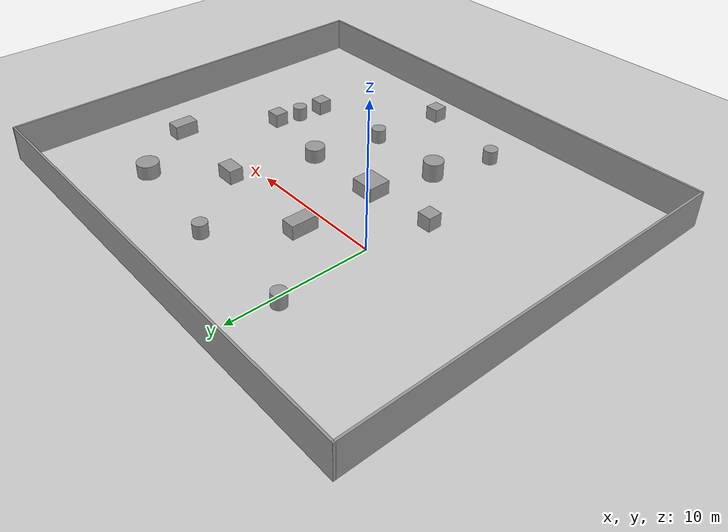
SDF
<sdf version="1.7">
 <world name="default">
  <light name="sun" type="directional">
   <pose>0 0 10 0 -0 0</pose>
   <diffuse>0.8 0.8 0.8 1</diffuse>
   <specular>0.2 0.2 0.2 1</specular>
   <attenuation>
    <range>1000</range>
    <constant>0.9</constant>
    <linear>0.01</linear>
    <quadratic>0.001</quadratic>
   </attenuation>
   <direction>-0.5 0.1 -0.9</direction>
   <spot><inner_angle>0</inner_angle><outer_angle>0</outer_angle><falloff>0</falloff></spot>
  </light>
  <model name="ground_plane">
   <static>1</static>
   <link name="link">
    <collision name="collision">
     <geometry><plane><normal>0 0 1</normal><size>100 100</size></plane></geometry>
     <surface><friction><ode><mu>100</mu><mu2>50</mu2></ode></friction></surface>
    </collision>
    <visual name="visual">
     <cast_shadows>0</cast_shadows>
     <geometry><plane><normal>0 0 1</normal><size>100 100</size></plane></geometry>
     <material>
      <script><uri>file://media/materials/scripts/gazebo.material</uri><name>Gazebo/Grey</name></script>
     </material>
    </visual>
   </link>
  </model>
  <gravity>0 0 -9.8</gravity>
  <magnetic_field>6e-06 2.3e-05 -4.2e-05</magnetic_field>
  <atmosphere type="adiabatic"/>
  <physics type="ode">
   <max_step_size>0.001</max_step_size>
   <real_time_factor>1</real_time_factor>
   <real_time_update_rate>1000</real_time_update_rate>
  </physics>
  <scene><ambient>0.4 0.4 0.4 1</ambient><background>0.7 0.7 0.7 1</background><shadows>1</shadows></scene>
  <spherical_coordinates>
   <surface_model>EARTH_WGS84</surface_model>
   <latitude_deg>0</latitude_deg>
   <longitude_deg>0</longitude_deg>
   <elevation>0</elevation>
   <heading_deg>0</heading_deg>
  </spherical_coordinates>
  <model name="paper_world">
   <pose>5.91262 -2.7055 0 0 -0 0</pose>
   <link name="Wall_10">
    <collision name="Wall_10_Collision">
     <geometry><box><size>34 0.15 2.5</size></box></geometry>
     <pose>0 0 1.25 0 -0 0</pose>
    </collision>
    <visual name="Wall_10_Visual">
     <pose>0 0 1.25 0 -0 0</pose>
     <geometry><box><size>34 0.15 2.5</size></box></geometry>
     <material>
      <script><uri>file://media/materials/scripts/gazebo.material</uri><name>Gazebo/Grey</name></script>
      <ambient>1 1 1 1</ambient>
     </material>
     <meta><layer>0</layer></meta>
    </visual>
    <pose>-0 14.3 0 0 -0 0</pose>
   </link>
   <link name="Wall_2">
    <collision name="Wall_2_Collision">
     <geometry><box><size>28.75 0.15 2.5</size></box></geometry>
     <pose>0 0 1.25 0 -0 0</pose>
    </collision>
    <visual name="Wall_2_Visual">
     <pose>0 0 1.25 0 -0 0</pose>
     <geometry><box><size>28.75 0.15 2.5</size></box></geometry>
     <material>
      <script><uri>file://media/materials/scripts/gazebo.material</uri><name>Gazebo/Grey</name></script>
      <ambient>1 1 1 1</ambient>
     </material>
     <meta><layer>0</layer></meta>
    </visual>
    <pose>-16.925 -0 0 0 -0 -1.5708</pose>
   </link>
   <link name="Wall_3">
    <collision name="Wall_3_Collision">
     <geometry><box><size>34 0.15 2.5</size></box></geometry>
     <pose>0 0 1.25 0 -0 0</pose>
    </collision>
    <visual name="Wall_3_Visual">
     <pose>0 0 1.25 0 -0 0</pose>
     <geometry><box><size>34 0.15 2.5</size></box></geometry>
     <material>
      <script><uri>file://media/materials/scripts/gazebo.material</uri><name>Gazebo/Grey</name></script>
      <ambient>1 1 1 1</ambient>
     </material>
     <meta><layer>0</layer></meta>
    </visual>
    <pose>-0 -14.3 0 0 -0 0</pose>
   </link>
   <link name="Wall_4">
    <collision name="Wall_4_Collision">
     <geometry><box><size>28.75 0.15 2.5</size></box></geometry>
     <pose>0 0 1.25 0 -0 0</pose>
    </collision>
    <visual name="Wall_4_Visual">
     <pose>0 0 1.25 0 -0 0</pose>
     <geometry><box><size>28.75 0.15 2.5</size></box></geometry>
     <material>
      <script><uri>file://media/materials/scripts/gazebo.material</uri><name>Gazebo/Grey</name></script>
      <ambient>1 1 1 1</ambient>
     </material>
     <meta><layer>0</layer></meta>
    </visual>
    <pose>16.925 -0 0 0 -0 1.5708</pose>
   </link>
   <static>1</static>
  </model>
  <model name="test">
   <link name="link_0">
    <inertial>
     <mass>2.35844</mass>
     <inertia><ixx>0.54418</ixx><ixy>0</ixy><ixz>0</ixz><iyy>0.54418</iyy><iyz>0</iyz><izz>0.695287</izz></inertia>
    </inertial>
    <pose>6.8224 9.17542 0 0 -0 0</pose>
    <visual name="visual">
     <geometry><cylinder><radius>0.767864</radius><length>1</length></cylinder></geometry>
     <material>
      <lighting>1</lighting>
      <script><uri>file://media/materials/scripts/gazebo.material</uri><name>Gazebo/Grey</name></script>
      <shader type="pixel"/>
     </material>
    </visual>
    <collision name="collision">
     <geometry><cylinder><radius>0.767864</radius><length>1</length></cylinder></geometry>
     <surface>
      <friction>
       <ode><mu>1</mu><mu2>1</mu2><fdir1>0 0 0</fdir1><slip1>0</slip1><slip2>0</slip2></ode>
       <torsional>
        <coefficient>1</coefficient>
        <patch_radius>0</patch_radius>
        <surface_radius>0</surface_radius>
        <use_patch_radius>1</use_patch_radius>
        <ode><slip>0</slip></ode>
       </torsional>
      </friction>
      <bounce><restitution_coefficient>0</restitution_coefficient><threshold>1e+06</threshold></bounce>
      <contact>
       <collide_without_contact>0</collide_without_contact>
       <collide_without_contact_bitmask>1</collide_without_contact_bitmask>
       <collide_bitmask>1</collide_bitmask>
       <ode>
        <soft_cfm>0</soft_cfm>
        <soft_erp>0.2</soft_erp>
        <kp>1e+13</kp>
        <kd>1</kd>
        <max_vel>0.01</max_vel>
        <min_depth>0</min_depth>
       </ode>
       <bullet>
        <split_impulse>1</split_impulse>
        <split_impulse_penetration_threshold>-0.01</split_impulse_penetration_threshold>
        <soft_cfm>0</soft_cfm>
        <soft_erp>0.2</soft_erp>
        <kp>1e+13</kp>
        <kd>1</kd>
       </bullet>
      </contact>
     </surface>
    </collision>
   </link>
   <link name="link_1">
    <inertial>
     <mass>1.39777</mass>
     <inertia>
      <ixx>0.232962</ixx>
      <ixy>0</ixy>
      <ixz>0</ixz>
      <iyy>0.344058</iyy>
      <iyz>0</iyz>
      <izz>0.344058</izz>
     </inertia>
    </inertial>
    <pose>2.9123 5.19786 0 0 -0 0</pose>
    <visual name="visual">
     <geometry><box><size>1.39777 1 1</size></box></geometry>
     <material>
      <lighting>1</lighting>
      <script><uri>file://media/materials/scripts/gazebo.material</uri><name>Gazebo/Grey</name></script>
      <shader type="pixel"/>
     </material>
    </visual>
    <collision name="collision">
     <geometry><box><size>1.39777 1 1</size></box></geometry>
     <surface>
      <friction>
       <ode><mu>1</mu><mu2>1</mu2><fdir1>0 0 0</fdir1><slip1>0</slip1><slip2>0</slip2></ode>
       <torsional>
        <coefficient>1</coefficient>
        <patch_radius>0</patch_radius>
        <surface_radius>0</surface_radius>
        <use_patch_radius>1</use_patch_radius>
        <ode><slip>0</slip></ode>
       </torsional>
      </friction>
      <bounce><restitution_coefficient>0</restitution_coefficient><threshold>1e+06</threshold></bounce>
      <contact>
       <collide_without_contact>0</collide_without_contact>
       <collide_without_contact_bitmask>1</collide_without_contact_bitmask>
       <collide_bitmask>1</collide_bitmask>
       <ode>
        <soft_cfm>0</soft_cfm>
        <soft_erp>0.2</soft_erp>
        <kp>1e+13</kp>
        <kd>1</kd>
        <max_vel>0.01</max_vel>
        <min_depth>0</min_depth>
       </ode>
       <bullet>
        <split_impulse>1</split_impulse>
        <split_impulse_penetration_threshold>-0.01</split_impulse_penetration_threshold>
        <soft_cfm>0</soft_cfm>
        <soft_erp>0.2</soft_erp>
        <kp>1e+13</kp>
        <kd>1</kd>
       </bullet>
      </contact>
     </surface>
    </collision>
   </link>
   <link name="link_10">
    <inertial>
     <mass>1</mass>
     <inertia>
      <ixx>0.166667</ixx>
      <ixy>0</ixy>
      <ixz>0</ixz>
      <iyy>0.166667</iyy>
      <iyz>0</iyz>
      <izz>0.166667</izz>
     </inertia>
    </inertial>
    <pose>-9.28458 -1.16229 0 0 -0 0</pose>
    <visual name="visual">
     <geometry><box><size>1 1 1</size></box></geometry>
     <material>
      <lighting>1</lighting>
      <script><uri>file://media/materials/scripts/gazebo.material</uri><name>Gazebo/Grey</name></script>
      <shader type="pixel"/>
     </material>
    </visual>
    <collision name="collision">
     <geometry><box><size>1 1 1</size></box></geometry>
     <surface>
      <friction>
       <ode><mu>1</mu><mu2>1</mu2><fdir1>0 0 0</fdir1><slip1>0</slip1><slip2>0</slip2></ode>
       <torsional>
        <coefficient>1</coefficient>
        <patch_radius>0</patch_radius>
        <surface_radius>0</surface_radius>
        <use_patch_radius>1</use_patch_radius>
        <ode><slip>0</slip></ode>
       </torsional>
      </friction>
      <bounce><restitution_coefficient>0</restitution_coefficient><threshold>1e+06</threshold></bounce>
      <contact>
       <collide_without_contact>0</collide_without_contact>
       <collide_without_contact_bitmask>1</collide_without_contact_bitmask>
       <collide_bitmask>1</collide_bitmask>
       <ode>
        <soft_cfm>0</soft_cfm>
        <soft_erp>0.2</soft_erp>
        <kp>1e+13</kp>
        <kd>1</kd>
        <max_vel>0.01</max_vel>
        <min_depth>0</min_depth>
       </ode>
       <bullet>
        <split_impulse>1</split_impulse>
        <split_impulse_penetration_threshold>-0.01</split_impulse_penetration_threshold>
        <soft_cfm>0</soft_cfm>
        <soft_erp>0.2</soft_erp>
        <kp>1e+13</kp>
        <kd>1</kd>
       </bullet>
      </contact>
     </surface>
    </collision>
   </link>
   <link name="link_11">
    <inertial>
     <mass>1</mass>
     <inertia><ixx>0.145833</ixx><ixy>0</ixy><ixz>0</ixz><iyy>0.145833</iyy><iyz>0</iyz><izz>0.125</izz></inertia>
    </inertial>
    <pose>-6.68815 -9.61856 0 0 -0 0</pose>
    <visual name="visual">
     <geometry><cylinder><radius>0.5</radius><length>1</length></cylinder></geometry>
     <material>
      <lighting>1</lighting>
      <script><uri>file://media/materials/scripts/gazebo.material</uri><name>Gazebo/Grey</name></script>
      <shader type="pixel"/>
     </material>
    </visual>
    <collision name="collision">
     <geometry><cylinder><radius>0.5</radius><length>1</length></cylinder></geometry>
     <surface>
      <friction>
       <ode><mu>1</mu><mu2>1</mu2><fdir1>0 0 0</fdir1><slip1>0</slip1><slip2>0</slip2></ode>
       <torsional>
        <coefficient>1</coefficient>
        <patch_radius>0</patch_radius>
        <surface_radius>0</surface_radius>
        <use_patch_radius>1</use_patch_radius>
        <ode><slip>0</slip></ode>
       </torsional>
      </friction>
      <bounce><restitution_coefficient>0</restitution_coefficient><threshold>1e+06</threshold></bounce>
      <contact>
       <collide_without_contact>0</collide_without_contact>
       <collide_without_contact_bitmask>1</collide_without_contact_bitmask>
       <collide_bitmask>1</collide_bitmask>
       <ode>
        <soft_cfm>0</soft_cfm>
        <soft_erp>0.2</soft_erp>
        <kp>1e+13</kp>
        <kd>1</kd>
        <max_vel>0.01</max_vel>
        <min_depth>0</min_depth>
       </ode>
       <bullet>
        <split_impulse>1</split_impulse>
        <split_impulse_penetration_threshold>-0.01</split_impulse_penetration_threshold>
        <soft_cfm>0</soft_cfm>
        <soft_erp>0.2</soft_erp>
        <kp>1e+13</kp>
        <kd>1</kd>
       </bullet>
      </contact>
     </surface>
    </collision>
   </link>
   <link name="link_12">
    <inertial>
     <mass>1</mass>
     <inertia>
      <ixx>0.166667</ixx>
      <ixy>0</ixy>
      <ixz>0</ixz>
      <iyy>0.166667</iyy>
      <iyz>0</iyz>
      <izz>0.166667</izz>
     </inertia>
    </inertial>
    <pose>6.8354 -1.59286 0 0 -0 0</pose>
    <visual name="visual">
     <geometry><box><size>1 1 1</size></box></geometry>
     <material>
      <lighting>1</lighting>
      <script><uri>file://media/materials/scripts/gazebo.material</uri><name>Gazebo/Grey</name></script>
      <shader type="pixel"/>
     </material>
    </visual>
    <collision name="collision">
     <geometry><box><size>1 1 1</size></box></geometry>
     <surface>
      <friction>
       <ode><mu>1</mu><mu2>1</mu2><fdir1>0 0 0</fdir1><slip1>0</slip1><slip2>0</slip2></ode>
       <torsional>
        <coefficient>1</coefficient>
        <patch_radius>0</patch_radius>
        <surface_radius>0</surface_radius>
        <use_patch_radius>1</use_patch_radius>
        <ode><slip>0</slip></ode>
       </torsional>
      </friction>
      <bounce><restitution_coefficient>0</restitution_coefficient><threshold>1e+06</threshold></bounce>
      <contact>
       <collide_without_contact>0</collide_without_contact>
       <collide_without_contact_bitmask>1</collide_without_contact_bitmask>
       <collide_bitmask>1</collide_bitmask>
       <ode>
        <soft_cfm>0</soft_cfm>
        <soft_erp>0.2</soft_erp>
        <kp>1e+13</kp>
        <kd>1</kd>
        <max_vel>0.01</max_vel>
        <min_depth>0</min_depth>
       </ode>
       <bullet>
        <split_impulse>1</split_impulse>
        <split_impulse_penetration_threshold>-0.01</split_impulse_penetration_threshold>
        <soft_cfm>0</soft_cfm>
        <soft_erp>0.2</soft_erp>
        <kp>1e+13</kp>
        <kd>1</kd>
       </bullet>
      </contact>
     </surface>
    </collision>
   </link>
   <link name="link_13">
    <inertial>
     <mass>1</mass>
     <inertia><ixx>0.145833</ixx><ixy>0</ixy><ixz>0</ixz><iyy>0.145833</iyy><iyz>0</iyz><izz>0.125</izz></inertia>
    </inertial>
    <pose>0.279985 -5.64687 0 0 -0 0</pose>
    <visual name="visual">
     <geometry><cylinder><radius>0.5</radius><length>1</length></cylinder></geometry>
     <material>
      <lighting>1</lighting>
      <script><uri>file://media/materials/scripts/gazebo.material</uri><name>Gazebo/Grey</name></script>
      <shader type="pixel"/>
     </material>
    </visual>
    <collision name="collision">
     <geometry><cylinder><radius>0.5</radius><length>1</length></cylinder></geometry>
     <surface>
      <friction>
       <ode><mu>1</mu><mu2>1</mu2><fdir1>0 0 0</fdir1><slip1>0</slip1><slip2>0</slip2></ode>
       <torsional>
        <coefficient>1</coefficient>
        <patch_radius>0</patch_radius>
        <surface_radius>0</surface_radius>
        <use_patch_radius>1</use_patch_radius>
        <ode><slip>0</slip></ode>
       </torsional>
      </friction>
      <bounce><restitution_coefficient>0</restitution_coefficient><threshold>1e+06</threshold></bounce>
      <contact>
       <collide_without_contact>0</collide_without_contact>
       <collide_without_contact_bitmask>1</collide_without_contact_bitmask>
       <collide_bitmask>1</collide_bitmask>
       <ode>
        <soft_cfm>0</soft_cfm>
        <soft_erp>0.2</soft_erp>
        <kp>1e+13</kp>
        <kd>1</kd>
        <max_vel>0.01</max_vel>
        <min_depth>0</min_depth>
       </ode>
       <bullet>
        <split_impulse>1</split_impulse>
        <split_impulse_penetration_threshold>-0.01</split_impulse_penetration_threshold>
        <soft_cfm>0</soft_cfm>
        <soft_erp>0.2</soft_erp>
        <kp>1e+13</kp>
        <kd>1</kd>
       </bullet>
      </contact>
     </surface>
    </collision>
   </link>
   <link name="link_14">
    <inertial>
     <mass>1.71585</mass>
     <inertia>
      <ixx>0.563966</ixx>
      <ixy>0</ixy>
      <ixz>0</ixz>
      <iyy>0.285976</iyy>
      <iyz>0</iyz>
      <izz>0.563966</izz>
     </inertia>
    </inertial>
    <pose>9.96126 4.5598 0 0 -0 0</pose>
    <visual name="visual">
     <geometry><box><size>1 1.71585 1</size></box></geometry>
     <material>
      <lighting>1</lighting>
      <script><uri>file://media/materials/scripts/gazebo.material</uri><name>Gazebo/Grey</name></script>
      <shader type="pixel"/>
     </material>
    </visual>
    <collision name="collision">
     <geometry><box><size>1 1.71585 1</size></box></geometry>
     <surface>
      <friction>
       <ode><mu>1</mu><mu2>1</mu2><fdir1>0 0 0</fdir1><slip1>0</slip1><slip2>0</slip2></ode>
       <torsional>
        <coefficient>1</coefficient>
        <patch_radius>0</patch_radius>
        <surface_radius>0</surface_radius>
        <use_patch_radius>1</use_patch_radius>
        <ode><slip>0</slip></ode>
       </torsional>
      </friction>
      <bounce><restitution_coefficient>0</restitution_coefficient><threshold>1e+06</threshold></bounce>
      <contact>
       <collide_without_contact>0</collide_without_contact>
       <collide_without_contact_bitmask>1</collide_without_contact_bitmask>
       <collide_bitmask>1</collide_bitmask>
       <ode>
        <soft_cfm>0</soft_cfm>
        <soft_erp>0.2</soft_erp>
        <kp>1e+13</kp>
        <kd>1</kd>
        <max_vel>0.01</max_vel>
        <min_depth>0</min_depth>
       </ode>
       <bullet>
        <split_impulse>1</split_impulse>
        <split_impulse_penetration_threshold>-0.01</split_impulse_penetration_threshold>
        <soft_cfm>0</soft_cfm>
        <soft_erp>0.2</soft_erp>
        <kp>1e+13</kp>
        <kd>1</kd>
       </bullet>
      </contact>
     </surface>
    </collision>
   </link>
   <link name="link_15">
    <inertial>
     <mass>1</mass>
     <inertia><ixx>0.145833</ixx><ixy>0</ixy><ixz>0</ixz><iyy>0.145833</iyy><iyz>0</iyz><izz>0.125</izz></inertia>
    </inertial>
    <pose>6.45641 -3.33112 0 0 -0 0</pose>
    <visual name="visual">
     <geometry><cylinder><radius>0.5</radius><length>1</length></cylinder></geometry>
     <material>
      <lighting>1</lighting>
      <script><uri>file://media/materials/scripts/gazebo.material</uri><name>Gazebo/Grey</name></script>
      <shader type="pixel"/>
     </material>
    </visual>
    <collision name="collision">
     <geometry><cylinder><radius>0.5</radius><length>1</length></cylinder></geometry>
     <surface>
      <friction>
       <ode><mu>1</mu><mu2>1</mu2><fdir1>0 0 0</fdir1><slip1>0</slip1><slip2>0</slip2></ode>
       <torsional>
        <coefficient>1</coefficient>
        <patch_radius>0</patch_radius>
        <surface_radius>0</surface_radius>
        <use_patch_radius>1</use_patch_radius>
        <ode><slip>0</slip></ode>
       </torsional>
      </friction>
      <bounce><restitution_coefficient>0</restitution_coefficient><threshold>1e+06</threshold></bounce>
      <contact>
       <collide_without_contact>0</collide_without_contact>
       <collide_without_contact_bitmask>1</collide_without_contact_bitmask>
       <collide_bitmask>1</collide_bitmask>
       <ode>
        <soft_cfm>0</soft_cfm>
        <soft_erp>0.2</soft_erp>
        <kp>1e+13</kp>
        <kd>1</kd>
        <max_vel>0.01</max_vel>
        <min_depth>0</min_depth>
       </ode>
       <bullet>
        <split_impulse>1</split_impulse>
        <split_impulse_penetration_threshold>-0.01</split_impulse_penetration_threshold>
        <soft_cfm>0</soft_cfm>
        <soft_erp>0.2</soft_erp>
        <kp>1e+13</kp>
        <kd>1</kd>
       </bullet>
      </contact>
     </surface>
    </collision>
   </link>
   <link name="link_2">
    <inertial>
     <mass>1</mass>
     <inertia><ixx>0.145833</ixx><ixy>0</ixy><ixz>0</ixz><iyy>0.145833</iyy><iyz>0</iyz><izz>0.125</izz></inertia>
    </inertial>
    <pose>-1.14847 10.0992 0 0 -0 0</pose>
    <visual name="visual">
     <geometry><cylinder><radius>0.5</radius><length>1</length></cylinder></geometry>
     <material>
      <lighting>1</lighting>
      <script><uri>file://media/materials/scripts/gazebo.material</uri><name>Gazebo/Grey</name></script>
      <shader type="pixel"/>
     </material>
    </visual>
    <collision name="collision">
     <geometry><cylinder><radius>0.5</radius><length>1</length></cylinder></geometry>
     <surface>
      <friction>
       <ode><mu>1</mu><mu2>1</mu2><fdir1>0 0 0</fdir1><slip1>0</slip1><slip2>0</slip2></ode>
       <torsional>
        <coefficient>1</coefficient>
        <patch_radius>0</patch_radius>
        <surface_radius>0</surface_radius>
        <use_patch_radius>1</use_patch_radius>
        <ode><slip>0</slip></ode>
       </torsional>
      </friction>
      <bounce><restitution_coefficient>0</restitution_coefficient><threshold>1e+06</threshold></bounce>
      <contact>
       <collide_without_contact>0</collide_without_contact>
       <collide_without_contact_bitmask>1</collide_without_contact_bitmask>
       <collide_bitmask>1</collide_bitmask>
       <ode>
        <soft_cfm>0</soft_cfm>
        <soft_erp>0.2</soft_erp>
        <kp>1e+13</kp>
        <kd>1</kd>
        <max_vel>0.01</max_vel>
        <min_depth>0</min_depth>
       </ode>
       <bullet>
        <split_impulse>1</split_impulse>
        <split_impulse_penetration_threshold>-0.01</split_impulse_penetration_threshold>
        <soft_cfm>0</soft_cfm>
        <soft_erp>0.2</soft_erp>
        <kp>1e+13</kp>
        <kd>1</kd>
       </bullet>
      </contact>
     </surface>
    </collision>
   </link>
   <link name="link_3">
    <inertial>
     <mass>2.75203</mass>
     <inertia>
      <ixx>0.815472</ixx>
      <ixy>0</ixy>
      <ixz>0</ixz>
      <iyy>0.908932</iyy>
      <iyz>0</iyz>
      <izz>1.26573</izz>
     </inertia>
    </inertial>
    <pose>-4.29739 -0.820509 0 0 -0 0</pose>
    <visual name="visual">
     <geometry><box><size>1.72143 1.59869 1</size></box></geometry>
     <material>
      <lighting>1</lighting>
      <script><uri>file://media/materials/scripts/gazebo.material</uri><name>Gazebo/Grey</name></script>
      <shader type="pixel"/>
     </material>
    </visual>
    <collision name="collision">
     <geometry><box><size>1.72143 1.59869 1</size></box></geometry>
     <surface>
      <friction>
       <ode><mu>1</mu><mu2>1</mu2><fdir1>0 0 0</fdir1><slip1>0</slip1><slip2>0</slip2></ode>
       <torsional>
        <coefficient>1</coefficient>
        <patch_radius>0</patch_radius>
        <surface_radius>0</surface_radius>
        <use_patch_radius>1</use_patch_radius>
        <ode><slip>0</slip></ode>
       </torsional>
      </friction>
      <bounce><restitution_coefficient>0</restitution_coefficient><threshold>1e+06</threshold></bounce>
      <contact>
       <collide_without_contact>0</collide_without_contact>
       <collide_without_contact_bitmask>1</collide_without_contact_bitmask>
       <collide_bitmask>1</collide_bitmask>
       <ode>
        <soft_cfm>0</soft_cfm>
        <soft_erp>0.2</soft_erp>
        <kp>1e+13</kp>
        <kd>1</kd>
        <max_vel>0.01</max_vel>
        <min_depth>0</min_depth>
       </ode>
       <bullet>
        <split_impulse>1</split_impulse>
        <split_impulse_penetration_threshold>-0.01</split_impulse_penetration_threshold>
        <soft_cfm>0</soft_cfm>
        <soft_erp>0.2</soft_erp>
        <kp>1e+13</kp>
        <kd>1</kd>
       </bullet>
      </contact>
     </surface>
    </collision>
   </link>
   <link name="link_4">
    <inertial>
     <mass>1</mass>
     <inertia>
      <ixx>0.166667</ixx>
      <ixy>0</ixy>
      <ixz>0</ixz>
      <iyy>0.166667</iyy>
      <iyz>0</iyz>
      <izz>0.166667</izz>
     </inertia>
    </inertial>
    <pose>6.27181 -5.2114 0 0 -0 0</pose>
    <visual name="visual">
     <geometry><box><size>1 1 1</size></box></geometry>
     <material>
      <lighting>1</lighting>
      <script><uri>file://media/materials/scripts/gazebo.material</uri><name>Gazebo/Grey</name></script>
      <shader type="pixel"/>
     </material>
    </visual>
    <collision name="collision">
     <geometry><box><size>1 1 1</size></box></geometry>
     <surface>
      <friction>
       <ode><mu>1</mu><mu2>1</mu2><fdir1>0 0 0</fdir1><slip1>0</slip1><slip2>0</slip2></ode>
       <torsional>
        <coefficient>1</coefficient>
        <patch_radius>0</patch_radius>
        <surface_radius>0</surface_radius>
        <use_patch_radius>1</use_patch_radius>
        <ode><slip>0</slip></ode>
       </torsional>
      </friction>
      <bounce><restitution_coefficient>0</restitution_coefficient><threshold>1e+06</threshold></bounce>
      <contact>
       <collide_without_contact>0</collide_without_contact>
       <collide_without_contact_bitmask>1</collide_without_contact_bitmask>
       <collide_bitmask>1</collide_bitmask>
       <ode>
        <soft_cfm>0</soft_cfm>
        <soft_erp>0.2</soft_erp>
        <kp>1e+13</kp>
        <kd>1</kd>
        <max_vel>0.01</max_vel>
        <min_depth>0</min_depth>
       </ode>
       <bullet>
        <split_impulse>1</split_impulse>
        <split_impulse_penetration_threshold>-0.01</split_impulse_penetration_threshold>
        <soft_cfm>0</soft_cfm>
        <soft_erp>0.2</soft_erp>
        <kp>1e+13</kp>
        <kd>1</kd>
       </bullet>
      </contact>
     </surface>
    </collision>
   </link>
   <link name="link_5">
    <inertial>
     <mass>1.86296</mass>
     <inertia>
      <ixx>0.372161</ixx>
      <ixy>0</ixy>
      <ixz>0</ixz>
      <iyy>0.372161</iyy>
      <iyz>0</iyz>
      <izz>0.433829</izz>
     </inertia>
    </inertial>
    <pose>1.28163 -0.64166 0 0 -0 0</pose>
    <visual name="visual">
     <geometry><cylinder><radius>0.682453</radius><length>1</length></cylinder></geometry>
     <material>
      <lighting>1</lighting>
      <script><uri>file://media/materials/scripts/gazebo.material</uri><name>Gazebo/Grey</name></script>
      <shader type="pixel"/>
     </material>
    </visual>
    <collision name="collision">
     <geometry><cylinder><radius>0.682453</radius><length>1</length></cylinder></geometry>
     <surface>
      <friction>
       <ode><mu>1</mu><mu2>1</mu2><fdir1>0 0 0</fdir1><slip1>0</slip1><slip2>0</slip2></ode>
       <torsional>
        <coefficient>1</coefficient>
        <patch_radius>0</patch_radius>
        <surface_radius>0</surface_radius>
        <use_patch_radius>1</use_patch_radius>
        <ode><slip>0</slip></ode>
       </torsional>
      </friction>
      <bounce><restitution_coefficient>0</restitution_coefficient><threshold>1e+06</threshold></bounce>
      <contact>
       <collide_without_contact>0</collide_without_contact>
       <collide_without_contact_bitmask>1</collide_without_contact_bitmask>
       <collide_bitmask>1</collide_bitmask>
       <ode>
        <soft_cfm>0</soft_cfm>
        <soft_erp>0.2</soft_erp>
        <kp>1e+13</kp>
        <kd>1</kd>
        <max_vel>0.01</max_vel>
        <min_depth>0</min_depth>
       </ode>
       <bullet>
        <split_impulse>1</split_impulse>
        <split_impulse_penetration_threshold>-0.01</split_impulse_penetration_threshold>
        <soft_cfm>0</soft_cfm>
        <soft_erp>0.2</soft_erp>
        <kp>1e+13</kp>
        <kd>1</kd>
       </bullet>
      </contact>
     </surface>
    </collision>
   </link>
   <link name="link_6">
    <inertial>
     <mass>1.96097</mass>
     <inertia>
      <ixx>0.791809</ixx>
      <ixy>0</ixy>
      <ixz>0</ixz>
      <iyy>0.326829</iyy>
      <iyz>0</iyz>
      <izz>0.791809</izz>
     </inertia>
    </inertial>
    <pose>-4.6351 5.17923 0 0 -0 0</pose>
    <visual name="visual">
     <geometry><box><size>1 1.96097 1</size></box></geometry>
     <material>
      <lighting>1</lighting>
      <script><uri>file://media/materials/scripts/gazebo.material</uri><name>Gazebo/Grey</name></script>
      <shader type="pixel"/>
     </material>
    </visual>
    <collision name="collision">
     <geometry><box><size>1 1.96097 1</size></box></geometry>
     <surface>
      <friction>
       <ode><mu>1</mu><mu2>1</mu2><fdir1>0 0 0</fdir1><slip1>0</slip1><slip2>0</slip2></ode>
       <torsional>
        <coefficient>1</coefficient>
        <patch_radius>0</patch_radius>
        <surface_radius>0</surface_radius>
        <use_patch_radius>1</use_patch_radius>
        <ode><slip>0</slip></ode>
       </torsional>
      </friction>
      <bounce><restitution_coefficient>0</restitution_coefficient><threshold>1e+06</threshold></bounce>
      <contact>
       <collide_without_contact>0</collide_without_contact>
       <collide_without_contact_bitmask>1</collide_without_contact_bitmask>
       <collide_bitmask>1</collide_bitmask>
       <ode>
        <soft_cfm>0</soft_cfm>
        <soft_erp>0.2</soft_erp>
        <kp>1e+13</kp>
        <kd>1</kd>
        <max_vel>0.01</max_vel>
        <min_depth>0</min_depth>
       </ode>
       <bullet>
        <split_impulse>1</split_impulse>
        <split_impulse_penetration_threshold>-0.01</split_impulse_penetration_threshold>
        <soft_cfm>0</soft_cfm>
        <soft_erp>0.2</soft_erp>
        <kp>1e+13</kp>
        <kd>1</kd>
       </bullet>
      </contact>
     </surface>
    </collision>
   </link>
   <link name="link_7">
    <inertial>
     <mass>2.94627</mass>
     <inertia>
      <ixx>0.927957</ixx>
      <ixy>0</ixy>
      <ixz>0</ixz>
      <iyy>0.927957</iyy>
      <iyz>0</iyz>
      <izz>0.710438</izz>
     </inertia>
    </inertial>
    <pose>-5.51875 -5.27348 0 0 -0 0</pose>
    <visual name="visual">
     <geometry><cylinder><radius>0.694451</radius><length>1.52733</length></cylinder></geometry>
     <material>
      <lighting>1</lighting>
      <script><uri>file://media/materials/scripts/gazebo.material</uri><name>Gazebo/Grey</name></script>
      <shader type="pixel"/>
     </material>
    </visual>
    <collision name="collision">
     <geometry><cylinder><radius>0.694451</radius><length>1.52733</length></cylinder></geometry>
     <surface>
      <friction>
       <ode><mu>1</mu><mu2>1</mu2><fdir1>0 0 0</fdir1><slip1>0</slip1><slip2>0</slip2></ode>
       <torsional>
        <coefficient>1</coefficient>
        <patch_radius>0</patch_radius>
        <surface_radius>0</surface_radius>
        <use_patch_radius>1</use_patch_radius>
        <ode><slip>0</slip></ode>
       </torsional>
      </friction>
      <bounce><restitution_coefficient>0</restitution_coefficient><threshold>1e+06</threshold></bounce>
      <contact>
       <collide_without_contact>0</collide_without_contact>
       <collide_without_contact_bitmask>1</collide_without_contact_bitmask>
       <collide_bitmask>1</collide_bitmask>
       <ode>
        <soft_cfm>0</soft_cfm>
        <soft_erp>0.2</soft_erp>
        <kp>1e+13</kp>
        <kd>1</kd>
        <max_vel>0.01</max_vel>
        <min_depth>0</min_depth>
       </ode>
       <bullet>
        <split_impulse>1</split_impulse>
        <split_impulse_penetration_threshold>-0.01</split_impulse_penetration_threshold>
        <soft_cfm>0</soft_cfm>
        <soft_erp>0.2</soft_erp>
        <kp>1e+13</kp>
        <kd>1</kd>
       </bullet>
      </contact>
     </surface>
    </collision>
   </link>
   <link name="link_8">
    <inertial>
     <mass>1</mass>
     <inertia>
      <ixx>0.166667</ixx>
      <ixy>0</ixy>
      <ixz>0</ixz>
      <iyy>0.166667</iyy>
      <iyz>0</iyz>
      <izz>0.166667</izz>
     </inertia>
    </inertial>
    <pose>-0.071201 -11.07 0 0 -0 0</pose>
    <visual name="visual">
     <geometry><box><size>1 1 1</size></box></geometry>
     <material>
      <lighting>1</lighting>
      <script><uri>file://media/materials/scripts/gazebo.material</uri><name>Gazebo/Grey</name></script>
      <shader type="pixel"/>
     </material>
    </visual>
    <collision name="collision">
     <geometry><box><size>1 1 1</size></box></geometry>
     <surface>
      <friction>
       <ode><mu>1</mu><mu2>1</mu2><fdir1>0 0 0</fdir1><slip1>0</slip1><slip2>0</slip2></ode>
       <torsional>
        <coefficient>1</coefficient>
        <patch_radius>0</patch_radius>
        <surface_radius>0</surface_radius>
        <use_patch_radius>1</use_patch_radius>
        <ode><slip>0</slip></ode>
       </torsional>
      </friction>
      <bounce><restitution_coefficient>0</restitution_coefficient><threshold>1e+06</threshold></bounce>
      <contact>
       <collide_without_contact>0</collide_without_contact>
       <collide_without_contact_bitmask>1</collide_without_contact_bitmask>
       <collide_bitmask>1</collide_bitmask>
       <ode>
        <soft_cfm>0</soft_cfm>
        <soft_erp>0.2</soft_erp>
        <kp>1e+13</kp>
        <kd>1</kd>
        <max_vel>0.01</max_vel>
        <min_depth>0</min_depth>
       </ode>
       <bullet>
        <split_impulse>1</split_impulse>
        <split_impulse_penetration_threshold>-0.01</split_impulse_penetration_threshold>
        <soft_cfm>0</soft_cfm>
        <soft_erp>0.2</soft_erp>
        <kp>1e+13</kp>
        <kd>1</kd>
       </bullet>
      </contact>
     </surface>
    </collision>
   </link>
   <link name="link_9">
    <inertial>
     <mass>1</mass>
     <inertia><ixx>0.145833</ixx><ixy>0</ixy><ixz>0</ixz><iyy>0.145833</iyy><iyz>0</iyz><izz>0.125</izz></inertia>
    </inertial>
    <pose>-9.1775 10.1571 0 0 -0 0</pose>
    <visual name="visual">
     <geometry><cylinder><radius>0.5</radius><length>1</length></cylinder></geometry>
     <material>
      <lighting>1</lighting>
      <script><uri>file://media/materials/scripts/gazebo.material</uri><name>Gazebo/Grey</name></script>
      <shader type="pixel"/>
     </material>
    </visual>
    <collision name="collision">
     <geometry><cylinder><radius>0.5</radius><length>1</length></cylinder></geometry>
     <surface>
      <friction>
       <ode><mu>1</mu><mu2>1</mu2><fdir1>0 0 0</fdir1><slip1>0</slip1><slip2>0</slip2></ode>
       <torsional>
        <coefficient>1</coefficient>
        <patch_radius>0</patch_radius>
        <surface_radius>0</surface_radius>
        <use_patch_radius>1</use_patch_radius>
        <ode><slip>0</slip></ode>
       </torsional>
      </friction>
      <bounce><restitution_coefficient>0</restitution_coefficient><threshold>1e+06</threshold></bounce>
      <contact>
       <collide_without_contact>0</collide_without_contact>
       <collide_without_contact_bitmask>1</collide_without_contact_bitmask>
       <collide_bitmask>1</collide_bitmask>
       <ode>
        <soft_cfm>0</soft_cfm>
        <soft_erp>0.2</soft_erp>
        <kp>1e+13</kp>
        <kd>1</kd>
        <max_vel>0.01</max_vel>
        <min_depth>0</min_depth>
       </ode>
       <bullet>
        <split_impulse>1</split_impulse>
        <split_impulse_penetration_threshold>-0.01</split_impulse_penetration_threshold>
        <soft_cfm>0</soft_cfm>
        <soft_erp>0.2</soft_erp>
        <kp>1e+13</kp>
        <kd>1</kd>
       </bullet>
      </contact>
     </surface>
    </collision>
   </link>
   <static>1</static>
   <pose>8.63351 -3.39687 0.5 0 -0 0</pose>
  </model>
 </world>
</sdf>
